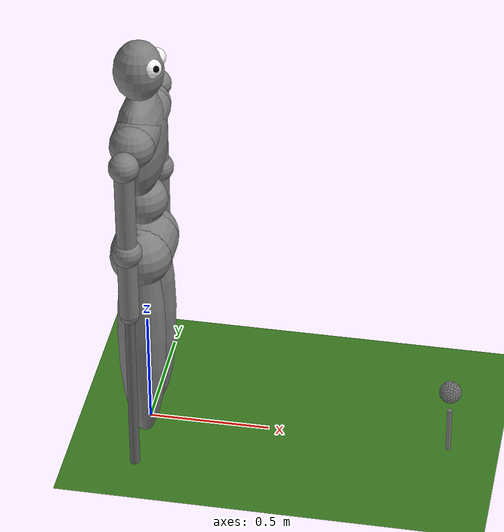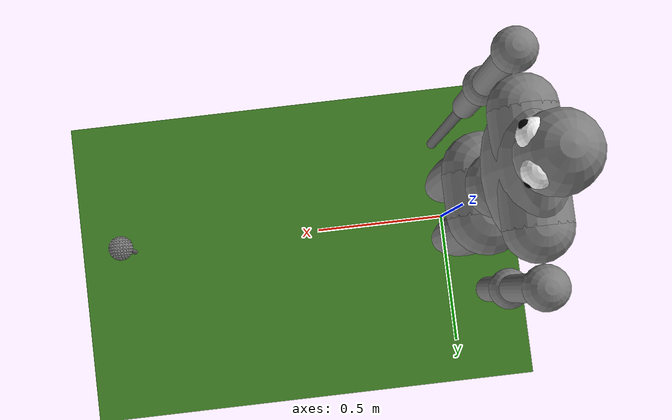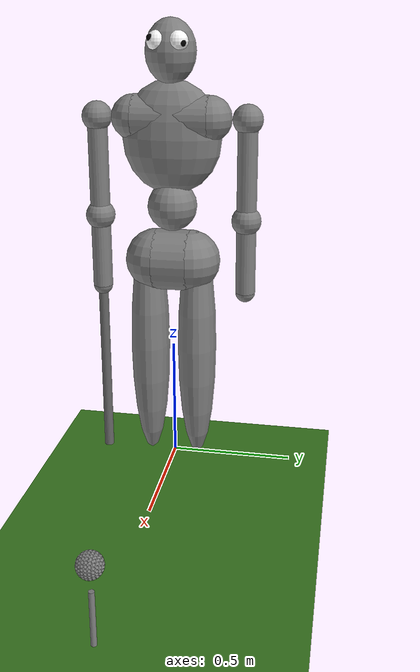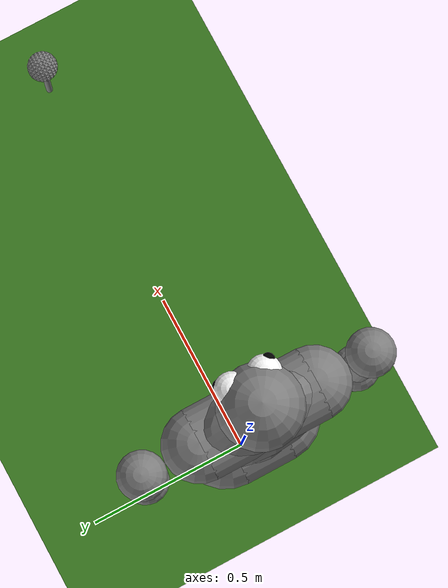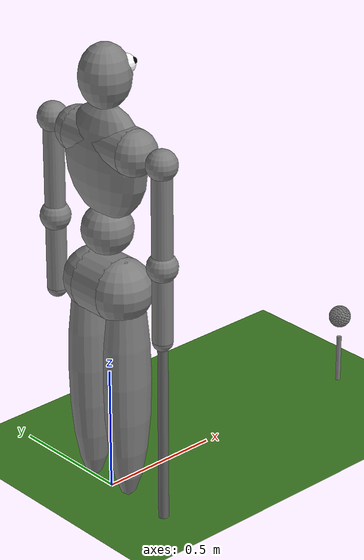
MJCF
<mujoco model="main">

    <!-- Definições para o compilador - fazer com que o MUJOCO utilize graus em vez de radianos,
         permitir limites automáticos (por conveniência), e definir o valor da aceleração gravítica-->
    <compiler angle="degree" autolimits="true"/>
    <option gravity="0 0 -9.81"/>

    <!-- Criar luz ambiente -->
    <visual>
        <headlight ambient="0.5 0.5 0.5" diffuse="0.5 0.5 0.5" specular="0.1 0.1 0.1"/>
    </visual>

    <asset>
        <!-- Definir um gradiente para o céu -->
        <texture name="sky" type="skybox" builtin="gradient" rgb1="0.55 0.75 0.95" rgb2="0.9 0.95 1.0" width="512" height="3072"/>

        <!-- Definir textura para o chão de relva -->
        <texture name="grass_tex" type="2d" builtin="checker" rgb1="0.20 0.45 0.10" rgb2="0.25 0.50 0.15" width="512" height="512"/>
        <material name="grass_mat" texture="grass_tex" texrepeat="40 40"/>

        <!-- Golf ball material -->
        <material name="ball_mat" rgba="0.98 0.98 0.98 1" specular="0.6" shininess="0.6"/>

        <!-- Scaled golf ball mesh -->
        <mesh name="golf_ball_mesh" file="golf_ball.stl" scale="0.0009 0.0009 0.0009"/>
    </asset>

    <worldbody>

        <!-- Definir a luz do sol e o chão de relva (com atrito) -->
        <light name="sun" pos="0 0 20" dir="0 0 -1" directional="true" diffuse="0.9 0.9 0.85" specular="0.2 0.2 0.2" castshadow="true"/>
        <geom name="floor" type="plane" size="50 50 0.1" material="grass_mat" friction="0.8 0.01 0.1" condim="6"/>

        <!-- O corpo do robô começa aqui -->
        <body name="main_body" pos="0 0 0">

            <!-- Perna esquerda - deslocada para Y = -0.1 -->
            <geom name="left_leg" type="ellipsoid" pos="0 -0.1 0.5" size="0.1 0.08 0.5" mass="14"/>

            <!-- Perna direita - deslocada para Y = 0.1 -->
            <geom name="right_leg" type="ellipsoid" pos="0 0.1 0.5" size="0.1 0.08 0.5" mass="14"/>

            <!-- Pelvis -->
            <geom name="pelvis" type="cylinder" fromto="0 -0.07 0.875 0 0.07 0.875" size="0.125" mass="4"/>
            <geom name="pelvis_s1" type="sphere" pos="0 -0.07 0.875" size="0.125" mass="3"/>
            <geom name="pelvis_s2" type="sphere" pos="0 0.07 0.875" size="0.125" mass="3"/>

            <!-- Junta esférica para a anca + parte superior do corpo -->
            <body name="hip_body" pos="0 0 1.0">

                <!-- Junta esférica para a anca com 3 DoF. Cada junta tem um alcance associado.-->
                <joint name="rot_hip_x" type="hinge" axis="1 0 0" range="-30 30" damping="0.5"/>
                <joint name="rot_hip_y" type="hinge" axis="0 1 0" range="-15 50" damping="0.5"/>
                <joint name="rot_hip_z" type="hinge" axis="0 0 1" range="-80 80" damping="0.5"/>
                <geom type="sphere" pos="0 0 0.1" size="0.1" mass="5"/>

                <!-- Parte superior do corpo -->
                <body name="upper_body" pos="0 0 0.15">

                    <geom name="torso" type="ellipsoid" pos="0 0 0.225" size="0.10 0.2 0.225" mass="10"/>
                    <geom name="torax" type="cylinder" fromto="0 -0.15 0.3 0 0.15 0.3" size="0.09" mass="5"/>

                    <!-- Cabeça -->
                    <body name="head" pos="0 0 0.55">
                        <geom name="head" type="ellipsoid" size="0.1 0.1 0.125" mass ="5"/>
                        <geom name="right_eyeball" type="sphere" size="0.04" mass="0" pos="0.06 -0.04 0.04" rgba="1 1 1 1"/>
                        <geom name="left_eyeball" type="sphere" size="0.04" mass="0" pos="0.06 0.04 0.04" rgba="1 1 1 1"/>
                        <geom name="right_pupil" type="sphere" size="0.015" mass="0" pos="0.08 -0.060 0.052" rgba="0 0 0 1"/>
                        <geom name="left_pupil" type="sphere" size="0.015" mass="0" pos="0.08 0.060 0.035" rgba="0 0 0 1"/>
                    </body>

                    <!-- Braço esquerdo -->
                    <!-- Por ordem: Esfera do ombro -> Braço e esfera pequena do ombro -> Antebraço -> Esfera da mão -->
                    <body name="left_arm_whole" pos="0 0.15 0.3">

                        <geom name="left_shoulder" type="sphere" size="0.09" mass="0.5"/>

                        <body name="left_arm" pos="0 0.15 0">

                            <!-- 2 DoF para cada braço -->
                            <joint name="left_arm_y" type="hinge" axis="0 1 0" pos="0 0 0" range="-180 30" damping="20.0" />
                            <joint name="left_arm_x" type="hinge" axis="1 0 0" pos="0 0 0" range="-30 180" damping="20.0" />

                            <geom name="left_arm_cyl" type="cylinder" size="0.04 0.20" mass="2.5" pos="0 0 -0.20"/>
                            <geom name="left_arm_sph" type="sphere" size="0.06" mass="0.5" pos="0 0 0"/>

                            <!-- Antebraço -->
                            <body name="left_forearm" pos="0 0 -0.40" >
                                <geom type="sphere" size="0.06" mass="0.5" pos="0 0 0"/>
                                <geom type="cylinder" size="0.04 0.15" mass="1.5" pos="0 0 -0.15"/>
                                <joint name="left_elbow" type="ball" damping="15.0"/>

                                <body name="left_hand" pos="0 0 -0.3">
                                    <geom name="left_hand_sph" type="sphere" size="0.04" mass="0.1" pos="0 0 0"/>

                                    <!-- Este é o braço que NÃO SEGURA o taco, apenas tem o site para depois conectar com a outra mão -->
                                    <site name="left_hand_site" size="0.01"/>
                                </body>
                            </body>
                        </body>
                    </body>

                    <!-- Braço direito -->
                    <!-- Por ordem: Esfera do ombro -> Braço e esfera pequena do ombro -> Antebraço -> Esfera da mão -->
                    <body name="right_arm_whole" pos="0 -0.15 0.3">

                        <geom name="right_shoulder" type="sphere" size="0.09" mass="0.5"/>

                        <body name="right_arm" pos="0 -0.15 0">

                            <!-- 2 DoF para cada braço -->
                            <joint name="right_arm_y" type="hinge" axis="0 1 0" pos="0 0 0" range="-180 30" damping="2.0"/>
                            <joint name="right_arm_x" type="hinge" axis="1 0 0" pos="0 0 0" range="-180 30" damping="2.0"/>

                            <geom name="right_arm_cyl" type="cylinder" size="0.04 0.20" mass="2.5" pos="0 0 -0.20"/>
                            <geom name="right_arm_sph" type="sphere" size="0.06" mass="0.5" pos="0 0 0"/>

                            <!-- Antebraço -->
                            <body name="right_forearm" pos="0 0 -0.40">
                                <geom name="right_forearm_sph" type="sphere" size="0.06" mass="0.5" pos="0 0 0"/>
                                <geom name="right_forearm_arm" type="cylinder" size="0.04 0.15" mass="1.5" pos="0 0 -0.15"/>

                                <joint name="right_elbow" type="hinge" axis="0 1 0" range="-120 0" damping="15.0"/>

                                <body name="right_wrist" pos="0 0 -0.3">
                                    <geom name="right_hand" type="sphere" size="0.04" mass="0.1"/>

                                    <!-- Este é o braço que SEGURA o taco, introduziu-se a junta do pulso, onde é preso o taco -->
                                    <site name="right_hand_site" pos="0 0 0" size="0.01" rgba="1 0 0 1"/>

                                    <!-- Articulação do pulso -->
                                    <joint name="wrist_y" type="hinge" axis="0 1 0" pos="0 0 0" range="-90 90" damping="0.5"/>
                                    <joint name="wrist_x" type="hinge" axis="1 0 0" pos="0 0 0" range="-90 90" damping="0.5"/>

                                    <!-- Taco - estilo putter, tamanho e peso realistas -->
                                    <body name="club" euler="0 0 180">
                                        <geom name="club_handle" type="cylinder" size="0.02 0.4" mass="0.5" pos="0 0 -0.4" rgba="0.4 0.4 0.4 1"/>
                                        <geom name="club_head" mass="0.35" type="box" size="0.04 0.02 0.15" rgba="0.4 0.4 0.4 1" euler="0 90 0" pos="-0.08  0 -0.80"/>
                                    </body>
                                </body>
                            </body>
                        </body>
                    </body>
                </body>
            </body>
        </body>

        <!-- Estaca pequena que segura a bola -->
        <body>
            <geom type="cylinder" fromto="1.25 0 0 1.25 0 0.2" size="0.01"/>
        </body>

        <!-- Bola de golf -->
        <body pos="1.205 -0.045 0.25">
            <geom type="mesh" mesh="golf_ball_mesh" mass="0.01" friction="0.8 0.01 0.01" condim="6"/>
            <joint type="free" pos="0 0 0"/>
        </body>

        <!-- Câmara, para colocar a janela de visualização num local adequado -->
        <camera name="fixed_cam" pos="20 -2 1" euler="45 0 0" mode="fixed"/>

    </worldbody>

    <!-- Evitar colisões entre o próprio corpo do robô (e o taco), já que as duas mãos estão uma em cima da outra a segurar o taco -->
    <contact>
        <exclude body1="left_forearm" body2="right_forearm"/>
        <exclude body1="left_forearm" body2="right_wrist"/>
        <exclude body1="left_forearm" body2="club"/>
        <exclude body1="left_hand" body2="right_forearm"/>
        <exclude body1="left_hand" body2="right_wrist"/>
        <exclude body1="left_hand" body2="club"/>
        <exclude body1="right_arm" body2="right_wrist"/>
        <exclude body1="right_arm" body2="club"/>
        <exclude body1="left_arm" body2="right_arm"/>
        <exclude body1="left_arm" body2="right_forearm"/>
        <exclude body1="left_arm" body2="right_wrist"/>
        <exclude body1="left_arm" body2="club"/>
        <exclude body1="right_arm" body2="left_forearm"/>
        <exclude body1="right_arm" body2="left_hand"/>
    </contact>

    <!-- Esta equality constraint apenas é ativada no script de Python, para que o modelo possa ser
          visualizado normalmente, sem forças que provocam movimento estranho no início -->
    <equality>
        <connect name="hands_connected" site1="left_hand_site" site2="right_hand_site" active="false"/>
    </equality>

    <!-- Atuadores, valores de kp e kv ajustados por tentativas -->
    <!-- kp tem de ser muito elevado para acompanhar os movimentos rápidos e de elevada amplitude -->
    <!-- kv tem de ser elevado para evitar oscilações -->
    <actuator>
        <position name="act_rot_hip_z" joint="rot_hip_z" kp="50000" kv="100"/>
        <position name="act_rot_hip_y" joint="rot_hip_y" kp="1000000" kv="100"/>
        <position name="act_rot_hip_x" joint="rot_hip_x" kp="10000" kv="100"/>

        <position name="act_left_arm_y"  joint="left_arm_y"  kp="1000" kv="100"/>
        <position name="act_left_arm_x"  joint="left_arm_x"  kp="1000" kv="100"/>
        <position name="act_right_arm_y" joint="right_arm_y" kp="10000" kv="100"/>
        <position name="act_right_arm_x" joint="right_arm_x" kp="10000" kv="100"/>

        <position name="act_right_elbow" joint="right_elbow" kp="10000" kv="100"/>
        <position name="act_left_elbow" joint="left_elbow" kp="10000" kv="100"/>

        <position name="act_wrist_y" joint="wrist_y" kp="10000" kv="100"/>
        <position name="act_wrist_x" joint="wrist_x" kp="10000" kv="100"/>
    </actuator>
</mujoco>
